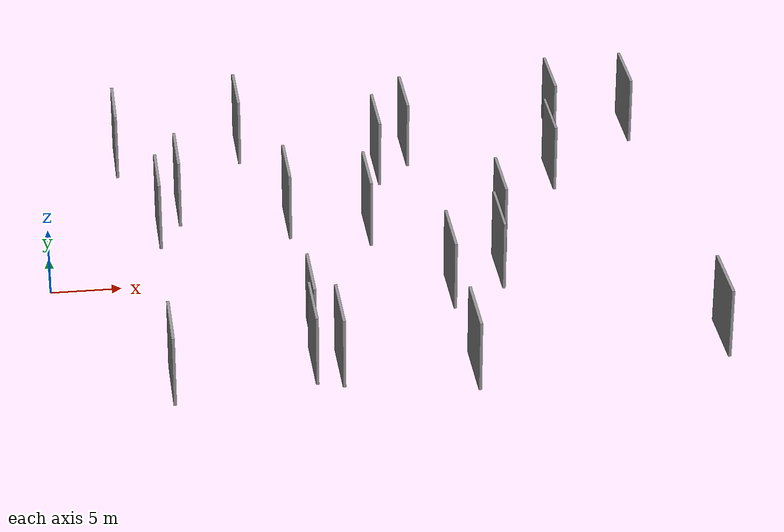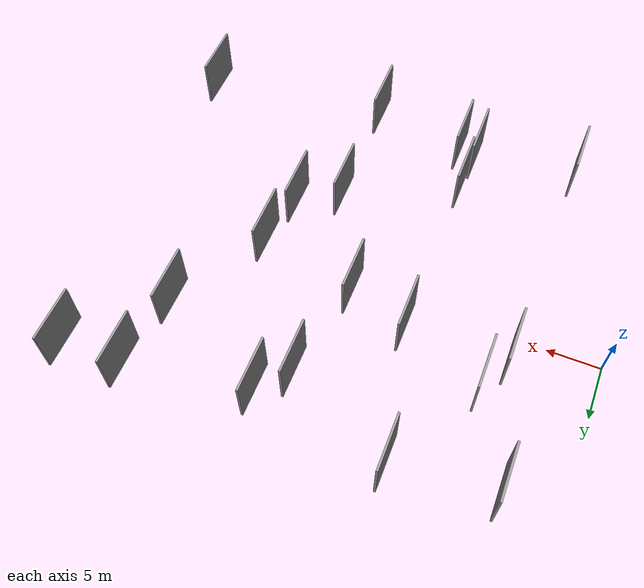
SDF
<sdf version="1.6">
 <world name="default">
  <scene>
   <sky><clouds><speed>12</speed></clouds></sky>
   <ambient>0.4 0.4 0.4 1</ambient>
   <background>0.7 0.7 0.7 1</background>
   <shadows>1</shadows>
  </scene>
  <gravity>0 0 -9.8066</gravity>
  <magnetic_field>6e-06 2.3e-05 -4.2e-05</magnetic_field>
  <physics default="0" name="default_physics" type="ode">
   <ode>
    <solver>
     <type>quick</type>
     <iters>10</iters>
     <sor>1.0</sor>
     <use_dynamic_moi_rescaling>0</use_dynamic_moi_rescaling>
    </solver>
    <constraints>
     <cfm>0</cfm>
     <erp>0.2</erp>
     <contact_max_correcting_vel>100</contact_max_correcting_vel>
     <contact_surface_layer>0.001</contact_surface_layer>
    </constraints>
   </ode>
   <max_step_size>0.004</max_step_size>
   <real_time_factor>1</real_time_factor>
   <real_time_update_rate>250</real_time_update_rate>
  </physics>
  <light name="sun" type="directional">
   <pose>0 0 10 0 0 0</pose>
   <diffuse>0.8 0.8 0.8 1</diffuse>
   <specular>0.2 0.2 0.2 1</specular>
   <attenuation>
    <range>1000</range>
    <constant>0.9</constant>
    <linear>0.01</linear>
    <quadratic>0.001</quadratic>
   </attenuation>
   <direction>-0.5 0.1 -0.9</direction>
  </light>
  <model name="grey_wall_1">
   <static>1</static>
   <pose>16.9462 -16.4166 2.5 0.000000 0.000000 1.570796</pose>
   <link name="link">
    <pose>0 0 2.50 0 0 0</pose>
    <collision name="collision"><geometry><box><size>5.00 0.2 5.00</size></box></geometry></collision>
    <visual name="visual">
     <cast_shadows>0</cast_shadows>
     <geometry><box><size>5.00 0.2 5.00</size></box></geometry>
     <material>
      <script>
       <uri>model://grey_wall/materials/scripts</uri>
       <uri>model://grey_wall/materials/textures</uri>
       <name>vrc/grey_wall</name>
      </script>
     </material>
    </visual>
   </link>
  </model>
  <model name="grey_wall_2">
   <static>1</static>
   <pose>14.6405 15.9133 2.5 0.000000 0.000000 1.570796</pose>
   <link name="link">
    <pose>0 0 2.50 0 0 0</pose>
    <collision name="collision"><geometry><box><size>5.00 0.2 5.00</size></box></geometry></collision>
    <visual name="visual">
     <cast_shadows>0</cast_shadows>
     <geometry><box><size>5.00 0.2 5.00</size></box></geometry>
     <material>
      <script>
       <uri>model://grey_wall/materials/scripts</uri>
       <uri>model://grey_wall/materials/textures</uri>
       <name>vrc/grey_wall</name>
      </script>
     </material>
    </visual>
   </link>
  </model>
  <model name="grey_wall_3">
   <static>1</static>
   <pose>32.1124 -0.0720 2.5 0.000000 0.000000 1.570796</pose>
   <link name="link">
    <pose>0 0 2.50 0 0 0</pose>
    <collision name="collision"><geometry><box><size>5.00 0.2 5.00</size></box></geometry></collision>
    <visual name="visual">
     <cast_shadows>0</cast_shadows>
     <geometry><box><size>5.00 0.2 5.00</size></box></geometry>
     <material>
      <script>
       <uri>model://grey_wall/materials/scripts</uri>
       <uri>model://grey_wall/materials/textures</uri>
       <name>vrc/grey_wall</name>
      </script>
     </material>
    </visual>
   </link>
  </model>
  <model name="grey_wall_4">
   <static>1</static>
   <pose>22.8124 2.0310 2.5 0.000000 0.000000 1.570796</pose>
   <link name="link">
    <pose>0 0 2.50 0 0 0</pose>
    <collision name="collision"><geometry><box><size>5.00 0.2 5.00</size></box></geometry></collision>
    <visual name="visual">
     <cast_shadows>0</cast_shadows>
     <geometry><box><size>5.00 0.2 5.00</size></box></geometry>
     <material>
      <script>
       <uri>model://grey_wall/materials/scripts</uri>
       <uri>model://grey_wall/materials/textures</uri>
       <name>vrc/grey_wall</name>
      </script>
     </material>
    </visual>
   </link>
  </model>
  <model name="grey_wall_5">
   <static>1</static>
   <pose>17.2191 -12.5391 2.5 0.000000 0.000000 1.570796</pose>
   <link name="link">
    <pose>0 0 2.50 0 0 0</pose>
    <collision name="collision"><geometry><box><size>5.00 0.2 5.00</size></box></geometry></collision>
    <visual name="visual">
     <cast_shadows>0</cast_shadows>
     <geometry><box><size>5.00 0.2 5.00</size></box></geometry>
     <material>
      <script>
       <uri>model://grey_wall/materials/scripts</uri>
       <uri>model://grey_wall/materials/textures</uri>
       <name>vrc/grey_wall</name>
      </script>
     </material>
    </visual>
   </link>
  </model>
  <model name="grey_wall_6">
   <static>1</static>
   <pose>7.9515 3.4358 2.5 0.000000 0.000000 1.570796</pose>
   <link name="link">
    <pose>0 0 2.50 0 0 0</pose>
    <collision name="collision"><geometry><box><size>5.00 0.2 5.00</size></box></geometry></collision>
    <visual name="visual">
     <cast_shadows>0</cast_shadows>
     <geometry><box><size>5.00 0.2 5.00</size></box></geometry>
     <material>
      <script>
       <uri>model://grey_wall/materials/scripts</uri>
       <uri>model://grey_wall/materials/textures</uri>
       <name>vrc/grey_wall</name>
      </script>
     </material>
    </visual>
   </link>
  </model>
  <model name="grey_wall_7">
   <static>1</static>
   <pose>18.6666 -16.9869 2.5 0.000000 0.000000 1.570796</pose>
   <link name="link">
    <pose>0 0 2.50 0 0 0</pose>
    <collision name="collision"><geometry><box><size>5.00 0.2 5.00</size></box></geometry></collision>
    <visual name="visual">
     <cast_shadows>0</cast_shadows>
     <geometry><box><size>5.00 0.2 5.00</size></box></geometry>
     <material>
      <script>
       <uri>model://grey_wall/materials/scripts</uri>
       <uri>model://grey_wall/materials/textures</uri>
       <name>vrc/grey_wall</name>
      </script>
     </material>
    </visual>
   </link>
  </model>
  <model name="grey_wall_8">
   <static>1</static>
   <pose>17.2159 3.7650 2.5 0.000000 0.000000 1.570796</pose>
   <link name="link">
    <pose>0 0 2.50 0 0 0</pose>
    <collision name="collision"><geometry><box><size>5.00 0.2 5.00</size></box></geometry></collision>
    <visual name="visual">
     <cast_shadows>0</cast_shadows>
     <geometry><box><size>5.00 0.2 5.00</size></box></geometry>
     <material>
      <script>
       <uri>model://grey_wall/materials/scripts</uri>
       <uri>model://grey_wall/materials/textures</uri>
       <name>vrc/grey_wall</name>
      </script>
     </material>
    </visual>
   </link>
  </model>
  <model name="grey_wall_9">
   <static>1</static>
   <pose>24.5792 11.2520 2.5 0.000000 0.000000 1.570796</pose>
   <link name="link">
    <pose>0 0 2.50 0 0 0</pose>
    <collision name="collision"><geometry><box><size>5.00 0.2 5.00</size></box></geometry></collision>
    <visual name="visual">
     <cast_shadows>0</cast_shadows>
     <geometry><box><size>5.00 0.2 5.00</size></box></geometry>
     <material>
      <script>
       <uri>model://grey_wall/materials/scripts</uri>
       <uri>model://grey_wall/materials/textures</uri>
       <name>vrc/grey_wall</name>
      </script>
     </material>
    </visual>
   </link>
  </model>
  <model name="grey_wall_10">
   <static>1</static>
   <pose>38.4060 15.8887 2.5 0.000000 0.000000 1.570796</pose>
   <link name="link">
    <pose>0 0 2.50 0 0 0</pose>
    <collision name="collision"><geometry><box><size>5.00 0.2 5.00</size></box></geometry></collision>
    <visual name="visual">
     <cast_shadows>0</cast_shadows>
     <geometry><box><size>5.00 0.2 5.00</size></box></geometry>
     <material>
      <script>
       <uri>model://grey_wall/materials/scripts</uri>
       <uri>model://grey_wall/materials/textures</uri>
       <name>vrc/grey_wall</name>
      </script>
     </material>
    </visual>
   </link>
  </model>
  <model name="grey_wall_11">
   <static>1</static>
   <pose>27.4920 -18.4001 2.5 0.000000 0.000000 1.570796</pose>
   <link name="link">
    <pose>0 0 2.50 0 0 0</pose>
    <collision name="collision"><geometry><box><size>5.00 0.2 5.00</size></box></geometry></collision>
    <visual name="visual">
     <cast_shadows>0</cast_shadows>
     <geometry><box><size>5.00 0.2 5.00</size></box></geometry>
     <material>
      <script>
       <uri>model://grey_wall/materials/scripts</uri>
       <uri>model://grey_wall/materials/textures</uri>
       <name>vrc/grey_wall</name>
      </script>
     </material>
    </visual>
   </link>
  </model>
  <model name="grey_wall_12">
   <static>1</static>
   <pose>44.1719 15.9756 2.5 0.000000 0.000000 1.570796</pose>
   <link name="link">
    <pose>0 0 2.50 0 0 0</pose>
    <collision name="collision"><geometry><box><size>5.00 0.2 5.00</size></box></geometry></collision>
    <visual name="visual">
     <cast_shadows>0</cast_shadows>
     <geometry><box><size>5.00 0.2 5.00</size></box></geometry>
     <material>
      <script>
       <uri>model://grey_wall/materials/scripts</uri>
       <uri>model://grey_wall/materials/textures</uri>
       <name>vrc/grey_wall</name>
      </script>
     </material>
    </visual>
   </link>
  </model>
  <model name="grey_wall_13">
   <static>1</static>
   <pose>9.5507 6.6470 2.5 0.000000 0.000000 1.570796</pose>
   <link name="link">
    <pose>0 0 2.50 0 0 0</pose>
    <collision name="collision"><geometry><box><size>5.00 0.2 5.00</size></box></geometry></collision>
    <visual name="visual">
     <cast_shadows>0</cast_shadows>
     <geometry><box><size>5.00 0.2 5.00</size></box></geometry>
     <material>
      <script>
       <uri>model://grey_wall/materials/scripts</uri>
       <uri>model://grey_wall/materials/textures</uri>
       <name>vrc/grey_wall</name>
      </script>
     </material>
    </visual>
   </link>
  </model>
  <model name="grey_wall_14">
   <static>1</static>
   <pose>5.4799 14.7228 2.5 0.000000 0.000000 1.570796</pose>
   <link name="link">
    <pose>0 0 2.50 0 0 0</pose>
    <collision name="collision"><geometry><box><size>5.00 0.2 5.00</size></box></geometry></collision>
    <visual name="visual">
     <cast_shadows>0</cast_shadows>
     <geometry><box><size>5.00 0.2 5.00</size></box></geometry>
     <material>
      <script>
       <uri>model://grey_wall/materials/scripts</uri>
       <uri>model://grey_wall/materials/textures</uri>
       <name>vrc/grey_wall</name>
      </script>
     </material>
    </visual>
   </link>
  </model>
  <model name="grey_wall_15">
   <static>1</static>
   <pose>27.4368 -7.5614 2.5 0.000000 0.000000 1.570796</pose>
   <link name="link">
    <pose>0 0 2.50 0 0 0</pose>
    <collision name="collision"><geometry><box><size>5.00 0.2 5.00</size></box></geometry></collision>
    <visual name="visual">
     <cast_shadows>0</cast_shadows>
     <geometry><box><size>5.00 0.2 5.00</size></box></geometry>
     <material>
      <script>
       <uri>model://grey_wall/materials/scripts</uri>
       <uri>model://grey_wall/materials/textures</uri>
       <name>vrc/grey_wall</name>
      </script>
     </material>
    </visual>
   </link>
  </model>
  <model name="grey_wall_16">
   <static>1</static>
   <pose>7.4451 -17.8723 2.5 0.000000 0.000000 1.570796</pose>
   <link name="link">
    <pose>0 0 2.50 0 0 0</pose>
    <collision name="collision"><geometry><box><size>5.00 0.2 5.00</size></box></geometry></collision>
    <visual name="visual">
     <cast_shadows>0</cast_shadows>
     <geometry><box><size>5.00 0.2 5.00</size></box></geometry>
     <material>
      <script>
       <uri>model://grey_wall/materials/scripts</uri>
       <uri>model://grey_wall/materials/textures</uri>
       <name>vrc/grey_wall</name>
      </script>
     </material>
    </visual>
   </link>
  </model>
  <model name="grey_wall_17">
   <static>1</static>
   <pose>44.7130 -16.2327 2.5 0.000000 0.000000 1.570796</pose>
   <link name="link">
    <pose>0 0 2.50 0 0 0</pose>
    <collision name="collision"><geometry><box><size>5.00 0.2 5.00</size></box></geometry></collision>
    <visual name="visual">
     <cast_shadows>0</cast_shadows>
     <geometry><box><size>5.00 0.2 5.00</size></box></geometry>
     <material>
      <script>
       <uri>model://grey_wall/materials/scripts</uri>
       <uri>model://grey_wall/materials/textures</uri>
       <name>vrc/grey_wall</name>
      </script>
     </material>
    </visual>
   </link>
  </model>
  <model name="grey_wall_18">
   <static>1</static>
   <pose>31.2039 -5.1673 2.5 0.000000 0.000000 1.570796</pose>
   <link name="link">
    <pose>0 0 2.50 0 0 0</pose>
    <collision name="collision"><geometry><box><size>5.00 0.2 5.00</size></box></geometry></collision>
    <visual name="visual">
     <cast_shadows>0</cast_shadows>
     <geometry><box><size>5.00 0.2 5.00</size></box></geometry>
     <material>
      <script>
       <uri>model://grey_wall/materials/scripts</uri>
       <uri>model://grey_wall/materials/textures</uri>
       <name>vrc/grey_wall</name>
      </script>
     </material>
    </visual>
   </link>
  </model>
  <model name="grey_wall_19">
   <static>1</static>
   <pose>27.0146 13.9757 2.5 0.000000 0.000000 1.570796</pose>
   <link name="link">
    <pose>0 0 2.50 0 0 0</pose>
    <collision name="collision"><geometry><box><size>5.00 0.2 5.00</size></box></geometry></collision>
    <visual name="visual">
     <cast_shadows>0</cast_shadows>
     <geometry><box><size>5.00 0.2 5.00</size></box></geometry>
     <material>
      <script>
       <uri>model://grey_wall/materials/scripts</uri>
       <uri>model://grey_wall/materials/textures</uri>
       <name>vrc/grey_wall</name>
      </script>
     </material>
    </visual>
   </link>
  </model>
  <model name="grey_wall_20">
   <static>1</static>
   <pose>37.2299 8.9301 2.5 0.000000 0.000000 1.570796</pose>
   <link name="link">
    <pose>0 0 2.50 0 0 0</pose>
    <collision name="collision"><geometry><box><size>5.00 0.2 5.00</size></box></geometry></collision>
    <visual name="visual">
     <cast_shadows>0</cast_shadows>
     <geometry><box><size>5.00 0.2 5.00</size></box></geometry>
     <material>
      <script>
       <uri>model://grey_wall/materials/scripts</uri>
       <uri>model://grey_wall/materials/textures</uri>
       <name>vrc/grey_wall</name>
      </script>
     </material>
    </visual>
   </link>
  </model>
 </world>
</sdf>
